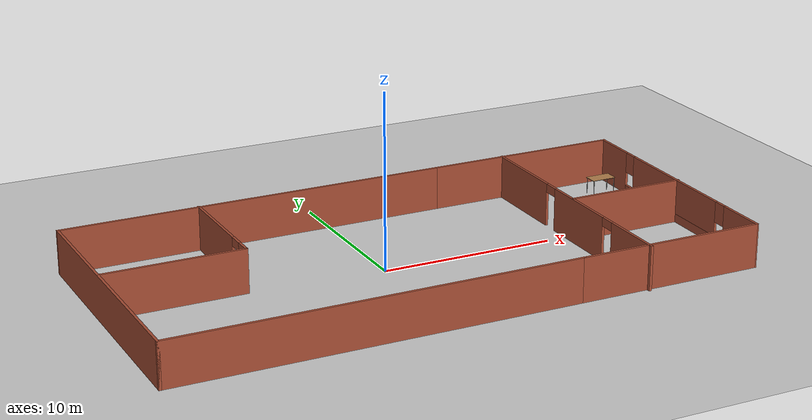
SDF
<sdf version="1.6">
 <world name="default">
  <light name="sun" type="directional">
   <pose>0 0 10 0 -0 0</pose>
   <diffuse>0.8 0.8 0.8 1</diffuse>
   <specular>0.2 0.2 0.2 1</specular>
   <attenuation>
    <range>1000</range>
    <constant>0.9</constant>
    <linear>0.01</linear>
    <quadratic>0.001</quadratic>
   </attenuation>
   <direction>-0.5 0.1 -0.9</direction>
  </light>
  <model name="ground_plane">
   <static>1</static>
   <link name="link">
    <collision name="collision">
     <geometry><plane><normal>0 0 1</normal><size>100 100</size></plane></geometry>
     <surface>
      <contact><collide_bitmask>65535</collide_bitmask></contact>
      <friction><ode><mu>100</mu><mu2>50</mu2></ode></friction>
     </surface>
    </collision>
    <visual name="visual">
     <cast_shadows>0</cast_shadows>
     <geometry><plane><normal>0 0 1</normal><size>100 100</size></plane></geometry>
     <material>
      <script><uri>file://media/materials/scripts/gazebo.material</uri><name>Gazebo/Grey</name></script>
     </material>
    </visual>
   </link>
  </model>
  <gravity>0 0 -9.8</gravity>
  <magnetic_field>6e-06 2.3e-05 -4.2e-05</magnetic_field>
  <atmosphere type="adiabatic"/>
  <physics name="default_physics" default="0" type="ode">
   <max_step_size>0.001</max_step_size>
   <real_time_factor>1</real_time_factor>
   <real_time_update_rate>1000</real_time_update_rate>
  </physics>
  <scene><ambient>0.4 0.4 0.4 1</ambient><background>0.7 0.7 0.7 1</background><shadows>1</shadows></scene>
  <spherical_coordinates>
   <surface_model>EARTH_WGS84</surface_model>
   <latitude_deg>0</latitude_deg>
   <longitude_deg>0</longitude_deg>
   <elevation>0</elevation>
   <heading_deg>0</heading_deg>
  </spherical_coordinates>
  <model name="home">
   <pose>1.27088 -0.535738 0 0 -0 0</pose>
   <link name="Wall_0">
    <collision name="Wall_0_Collision">
     <geometry><box><size>22.5 0.15 2.5</size></box></geometry>
     <pose>0 0 1.25 0 -0 0</pose>
    </collision>
    <visual name="Wall_0_Visual">
     <pose>0 0 1.25 0 -0 0</pose>
     <geometry><box><size>22.5 0.15 2.5</size></box></geometry>
     <material>
      <script><uri>file://media/materials/scripts/gazebo.material</uri><name>Gazebo/Bricks</name></script>
      <ambient>1 1 1 1</ambient>
     </material>
     <meta><layer>0</layer></meta>
    </visual>
    <pose>-5.67545 7.86796 0 0 -0 3.14159</pose>
   </link>
   <link name="Wall_1">
    <collision name="Wall_1_Collision">
     <geometry><box><size>15.75 0.15 2.5</size></box></geometry>
     <pose>0 0 1.25 0 -0 0</pose>
    </collision>
    <visual name="Wall_1_Visual">
     <pose>0 0 1.25 0 -0 0</pose>
     <geometry><box><size>15.75 0.15 2.5</size></box></geometry>
     <material>
      <script><uri>file://media/materials/scripts/gazebo.material</uri><name>Gazebo/Bricks</name></script>
      <ambient>1 1 1 1</ambient>
     </material>
     <meta><layer>0</layer></meta>
    </visual>
    <pose>-16.8504 0.067958 0 0 0 -1.5708</pose>
   </link>
   <link name="Wall_11">
    <pose>9.90372 0 0 0 0 -1.5708</pose>
    <visual name="Wall_11_Visual_0">
     <pose>-5.32645 0 1.25 0 -0 0</pose>
     <geometry><box><size>5.34709 0.15 2.5</size></box></geometry>
     <material>
      <script><uri>file://media/materials/scripts/gazebo.material</uri><name>Gazebo/Bricks</name></script>
      <ambient>1 1 1 1</ambient>
     </material>
     <meta><layer>0</layer></meta>
    </visual>
    <collision name="Wall_11_Collision_0">
     <geometry><box><size>5.34709 0.15 2.5</size></box></geometry>
     <pose>-5.32645 0 1.25 0 -0 0</pose>
    </collision>
    <visual name="Wall_11_Visual_1">
     <pose>0.75043 0 1.25 0 -0 0</pose>
     <geometry><box><size>5.00668 0.15 2.5</size></box></geometry>
     <material>
      <script><uri>file://media/materials/scripts/gazebo.material</uri><name>Gazebo/Bricks</name></script>
      <ambient>1 1 1 1</ambient>
     </material>
     <meta><layer>0</layer></meta>
    </visual>
    <collision name="Wall_11_Collision_1">
     <geometry><box><size>5.00668 0.15 2.5</size></box></geometry>
     <pose>0.75043 0 1.25 0 -0 0</pose>
    </collision>
    <visual name="Wall_11_Visual_2">
     <pose>6.07688 0 1.25 0 -0 0</pose>
     <geometry><box><size>3.84623 0.15 2.5</size></box></geometry>
     <material>
      <script><uri>file://media/materials/scripts/gazebo.material</uri><name>Gazebo/Bricks</name></script>
      <ambient>1 1 1 1</ambient>
     </material>
     <meta><layer>0</layer></meta>
    </visual>
    <collision name="Wall_11_Collision_2">
     <geometry><box><size>3.84623 0.15 2.5</size></box></geometry>
     <pose>6.07688 0 1.25 0 -0 0</pose>
    </collision>
    <visual name="Wall_11_Visual_3">
     <pose>-2.20291 0 2.25 0 -0 0</pose>
     <geometry><box><size>0.9 0.15 0.5</size></box></geometry>
     <material>
      <script><uri>file://media/materials/scripts/gazebo.material</uri><name>Gazebo/Bricks</name></script>
      <ambient>1 1 1 1</ambient>
     </material>
     <meta><layer>0</layer></meta>
    </visual>
    <collision name="Wall_11_Collision_3">
     <geometry><box><size>0.9 0.15 0.5</size></box></geometry>
     <pose>-2.20291 0 2.25 0 -0 0</pose>
    </collision>
    <visual name="Wall_11_Visual_4">
     <pose>3.70377 0 2.25 0 -0 0</pose>
     <geometry><box><size>0.9 0.15 0.5</size></box></geometry>
     <material>
      <script><uri>file://media/materials/scripts/gazebo.material</uri><name>Gazebo/Bricks</name></script>
      <ambient>1 1 1 1</ambient>
     </material>
     <meta><layer>0</layer></meta>
    </visual>
    <collision name="Wall_11_Collision_4">
     <geometry><box><size>0.9 0.15 0.5</size></box></geometry>
     <pose>3.70377 0 2.25 0 -0 0</pose>
    </collision>
   </link>
   <link name="Wall_13">
    <collision name="Wall_13_Collision">
     <geometry><box><size>7 0.15 2.5</size></box></geometry>
     <pose>0 0 1.25 0 -0 0</pose>
    </collision>
    <visual name="Wall_13_Visual">
     <pose>0 0 1.25 0 -0 0</pose>
     <geometry><box><size>7 0.15 2.5</size></box></geometry>
     <material>
      <script><uri>file://media/materials/scripts/gazebo.material</uri><name>Gazebo/Bricks</name></script>
      <ambient>1 1 1 1</ambient>
     </material>
     <meta><layer>0</layer></meta>
    </visual>
    <pose>13.3902 -0.073624 0 0 -0 0</pose>
   </link>
   <link name="Wall_15">
    <pose>-8.92381 4.5 0 0 0 -1.5708</pose>
    <visual name="Wall_15_Visual_0">
     <pose>-0.949509 0 1.25 0 -0 0</pose>
     <geometry><box><size>5.10098 0.15 2.5</size></box></geometry>
     <material>
      <script><uri>file://media/materials/scripts/gazebo.material</uri><name>Gazebo/Bricks</name></script>
      <ambient>1 1 1 1</ambient>
     </material>
     <meta><layer>0</layer></meta>
    </visual>
    <collision name="Wall_15_Collision_0">
     <geometry><box><size>5.10098 0.15 2.5</size></box></geometry>
     <pose>-0.949509 0 1.25 0 -0 0</pose>
    </collision>
    <visual name="Wall_15_Visual_1">
     <pose>3.00049 0 1.25 0 -0 0</pose>
     <geometry><box><size>0.999019 0.15 2.5</size></box></geometry>
     <material>
      <script><uri>file://media/materials/scripts/gazebo.material</uri><name>Gazebo/Bricks</name></script>
      <ambient>1 1 1 1</ambient>
     </material>
     <meta><layer>0</layer></meta>
    </visual>
    <collision name="Wall_15_Collision_1">
     <geometry><box><size>0.999019 0.15 2.5</size></box></geometry>
     <pose>3.00049 0 1.25 0 -0 0</pose>
    </collision>
    <visual name="Wall_15_Visual_2">
     <pose>2.05098 0 2.25 0 -0 0</pose>
     <geometry><box><size>0.9 0.15 0.5</size></box></geometry>
     <material>
      <script><uri>file://media/materials/scripts/gazebo.material</uri><name>Gazebo/Bricks</name></script>
      <ambient>1 1 1 1</ambient>
     </material>
     <meta><layer>0</layer></meta>
    </visual>
    <collision name="Wall_15_Collision_2">
     <geometry><box><size>0.9 0.15 0.5</size></box></geometry>
     <pose>2.05098 0 2.25 0 -0 0</pose>
    </collision>
   </link>
   <link name="Wall_16">
    <collision name="Wall_16_Collision">
     <geometry><box><size>8 0.15 2.5</size></box></geometry>
     <pose>0 0 1.25 0 -0 0</pose>
    </collision>
    <visual name="Wall_16_Visual">
     <pose>0 0 1.25 0 -0 0</pose>
     <geometry><box><size>8 0.15 2.5</size></box></geometry>
     <material>
      <script><uri>file://media/materials/scripts/gazebo.material</uri><name>Gazebo/Bricks</name></script>
      <ambient>1 1 1 1</ambient>
     </material>
     <meta><layer>0</layer></meta>
    </visual>
    <pose>-12.8488 1.075 0 0 -0 3.14159</pose>
   </link>
   <link name="Wall_2">
    <collision name="Wall_2_Collision">
     <geometry><box><size>23 0.15 2.5</size></box></geometry>
     <pose>0 0 1.25 0 -0 0</pose>
    </collision>
    <visual name="Wall_2_Visual">
     <pose>0 0 1.25 0 -0 0</pose>
     <geometry><box><size>23 0.15 2.5</size></box></geometry>
     <material>
      <script><uri>file://media/materials/scripts/gazebo.material</uri><name>Gazebo/Bricks</name></script>
      <ambient>1 1 1 1</ambient>
     </material>
     <meta><layer>0</layer></meta>
    </visual>
    <pose>-5.42545 -7.73204 0 0 -0 0</pose>
   </link>
   <link name="Wall_5">
    <collision name="Wall_5_Collision">
     <geometry><box><size>11.5 0.15 2.5</size></box></geometry>
     <pose>0 0 1.25 0 -0 0</pose>
    </collision>
    <visual name="Wall_5_Visual">
     <pose>0 0 1.25 0 -0 0</pose>
     <geometry><box><size>11.5 0.15 2.5</size></box></geometry>
     <material>
      <script><uri>file://media/materials/scripts/gazebo.material</uri><name>Gazebo/Bricks</name></script>
      <ambient>1 1 1 1</ambient>
     </material>
     <meta><layer>0</layer></meta>
    </visual>
    <pose>11.1746 7.86796 0 0 -0 0</pose>
   </link>
   <link name="Wall_6">
    <pose>16.756 0.067958 0 0 0 -1.58279</pose>
    <visual name="Wall_6_Visual_0">
     <pose>-6.4974 0 1.25 0 -0 0</pose>
     <geometry><box><size>2.75631 0.15 2.5</size></box></geometry>
     <material>
      <script><uri>file://media/materials/scripts/gazebo.material</uri><name>Gazebo/Bricks</name></script>
      <ambient>1 1 1 1</ambient>
     </material>
     <meta><layer>0</layer></meta>
    </visual>
    <collision name="Wall_6_Collision_0">
     <geometry><box><size>2.75631 0.15 2.5</size></box></geometry>
     <pose>-6.4974 0 1.25 0 -0 0</pose>
    </collision>
    <visual name="Wall_6_Visual_1">
     <pose>1.37816 0 0.25 0 -0 0</pose>
     <geometry><box><size>12.9948 0.15 0.5</size></box></geometry>
     <material>
      <script><uri>file://media/materials/scripts/gazebo.material</uri><name>Gazebo/Bricks</name></script>
      <ambient>1 1 1 1</ambient>
     </material>
     <meta><layer>0</layer></meta>
    </visual>
    <collision name="Wall_6_Collision_1">
     <geometry><box><size>12.9948 0.15 0.5</size></box></geometry>
     <pose>1.37816 0 0.25 0 -0 0</pose>
    </collision>
    <visual name="Wall_6_Visual_2">
     <pose>-0.135012 0 1.5 0 -0 0</pose>
     <geometry><box><size>8.36847 0.15 2</size></box></geometry>
     <material>
      <script><uri>file://media/materials/scripts/gazebo.material</uri><name>Gazebo/Bricks</name></script>
      <ambient>1 1 1 1</ambient>
     </material>
     <meta><layer>0</layer></meta>
    </visual>
    <collision name="Wall_6_Collision_2">
     <geometry><box><size>8.36847 0.15 2</size></box></geometry>
     <pose>-0.135012 0 1.5 0 -0 0</pose>
    </collision>
    <visual name="Wall_6_Visual_3">
     <pose>6.36239 0 1.5 0 -0 0</pose>
     <geometry><box><size>3.02634 0.15 2</size></box></geometry>
     <material>
      <script><uri>file://media/materials/scripts/gazebo.material</uri><name>Gazebo/Bricks</name></script>
      <ambient>1 1 1 1</ambient>
     </material>
     <meta><layer>0</layer></meta>
    </visual>
    <collision name="Wall_6_Collision_3">
     <geometry><box><size>3.02634 0.15 2</size></box></geometry>
     <pose>6.36239 0 1.5 0 -0 0</pose>
    </collision>
    <visual name="Wall_6_Visual_4">
     <pose>-4.71925 0 1.9 0 -0 0</pose>
     <geometry><box><size>0.8 0.15 1.2</size></box></geometry>
     <material>
      <script><uri>file://media/materials/scripts/gazebo.material</uri><name>Gazebo/Bricks</name></script>
      <ambient>1 1 1 1</ambient>
     </material>
     <meta><layer>0</layer></meta>
    </visual>
    <collision name="Wall_6_Collision_4">
     <geometry><box><size>0.8 0.15 1.2</size></box></geometry>
     <pose>-4.71925 0 1.9 0 -0 0</pose>
    </collision>
    <visual name="Wall_6_Visual_5">
     <pose>4.44922 0 1.9 0 -0 0</pose>
     <geometry><box><size>0.8 0.15 1.2</size></box></geometry>
     <material>
      <script><uri>file://media/materials/scripts/gazebo.material</uri><name>Gazebo/Bricks</name></script>
      <ambient>1 1 1 1</ambient>
     </material>
     <meta><layer>0</layer></meta>
    </visual>
    <collision name="Wall_6_Collision_5">
     <geometry><box><size>0.8 0.15 1.2</size></box></geometry>
     <pose>4.44922 0 1.9 0 -0 0</pose>
    </collision>
   </link>
   <link name="Wall_9">
    <collision name="Wall_9_Collision">
     <geometry><box><size>10.8128 0.15 2.5</size></box></geometry>
     <pose>0 0 1.25 0 -0 0</pose>
    </collision>
    <visual name="Wall_9_Visual">
     <pose>0 0 1.25 0 -0 0</pose>
     <geometry><box><size>10.8128 0.15 2.5</size></box></geometry>
     <material>
      <script><uri>file://media/materials/scripts/gazebo.material</uri><name>Gazebo/Bricks</name></script>
      <ambient>1 1 1 1</ambient>
     </material>
     <meta><layer>0</layer></meta>
    </visual>
    <pose>11.331 -7.73204 0 0 -0 0</pose>
   </link>
   <static>1</static>
  </model>
  <model name="table">
   <static>1</static>
   <link name="link">
    <collision name="surface">
     <pose>0 0 1 0 -0 0</pose>
     <geometry><box><size>1.5 0.8 0.03</size></box></geometry>
     <surface><friction><ode><mu>0.6</mu><mu2>0.6</mu2></ode></friction></surface>
    </collision>
    <visual name="visual1">
     <pose>0 0 1 0 -0 0</pose>
     <geometry><box><size>1.5 0.8 0.03</size></box></geometry>
     <material>
      <script><uri>file://media/materials/scripts/gazebo.material</uri><name>Gazebo/Wood</name></script>
     </material>
    </visual>
    <collision name="front_left_leg">
     <pose>0.68 0.38 0.5 0 -0 0</pose>
     <geometry><cylinder><radius>0.02</radius><length>1</length></cylinder></geometry>
    </collision>
    <visual name="front_left_leg">
     <pose>0.68 0.38 0.5 0 -0 0</pose>
     <geometry><cylinder><radius>0.02</radius><length>1</length></cylinder></geometry>
     <material>
      <script><uri>file://media/materials/scripts/gazebo.material</uri><name>Gazebo/Grey</name></script>
     </material>
    </visual>
    <collision name="front_right_leg">
     <pose>0.68 -0.38 0.5 0 -0 0</pose>
     <geometry><cylinder><radius>0.02</radius><length>1</length></cylinder></geometry>
    </collision>
    <visual name="front_right_leg">
     <pose>0.68 -0.38 0.5 0 -0 0</pose>
     <geometry><cylinder><radius>0.02</radius><length>1</length></cylinder></geometry>
     <material>
      <script><uri>file://media/materials/scripts/gazebo.material</uri><name>Gazebo/Grey</name></script>
     </material>
    </visual>
    <collision name="back_right_leg">
     <pose>-0.68 -0.38 0.5 0 -0 0</pose>
     <geometry><cylinder><radius>0.02</radius><length>1</length></cylinder></geometry>
    </collision>
    <visual name="back_right_leg">
     <pose>-0.68 -0.38 0.5 0 -0 0</pose>
     <geometry><cylinder><radius>0.02</radius><length>1</length></cylinder></geometry>
     <material>
      <script><uri>file://media/materials/scripts/gazebo.material</uri><name>Gazebo/Grey</name></script>
     </material>
    </visual>
    <collision name="back_left_leg">
     <pose>-0.68 0.38 0.5 0 -0 0</pose>
     <geometry><cylinder><radius>0.02</radius><length>1</length></cylinder></geometry>
    </collision>
    <visual name="back_left_leg">
     <pose>-0.68 0.38 0.5 0 -0 0</pose>
     <geometry><cylinder><radius>0.02</radius><length>1</length></cylinder></geometry>
     <material>
      <script><uri>file://media/materials/scripts/gazebo.material</uri><name>Gazebo/Grey</name></script>
     </material>
    </visual>
   </link>
   <pose>16.6639 5.2381 0 0 -0 0</pose>
  </model>
 </world>
</sdf>
